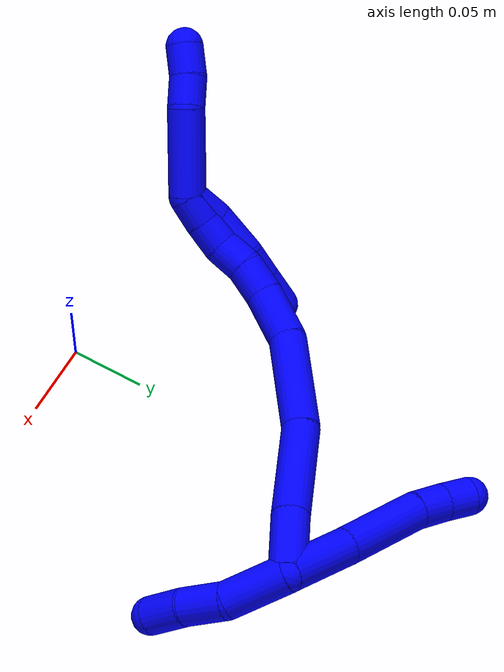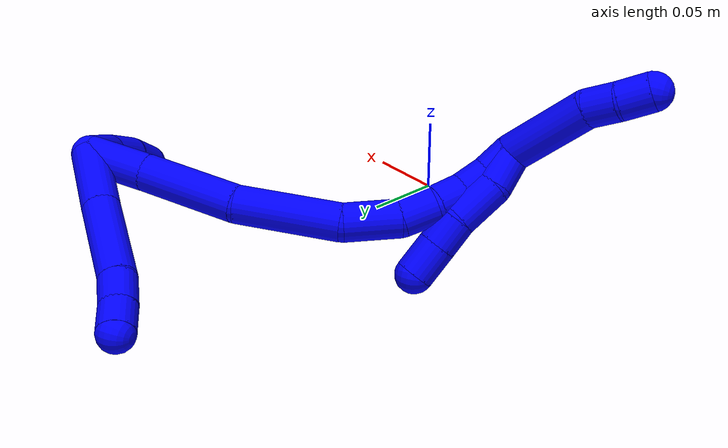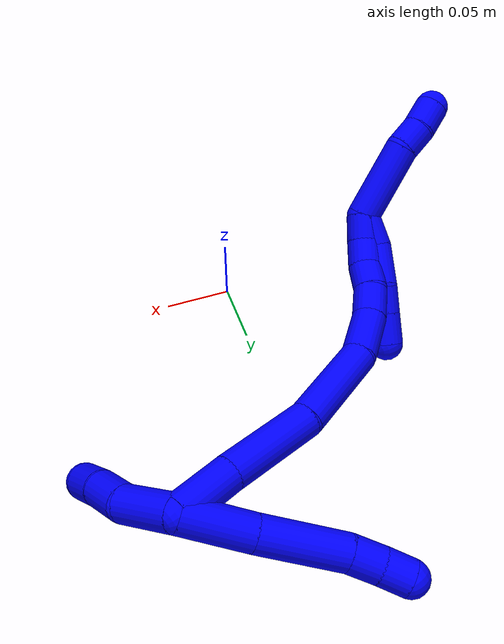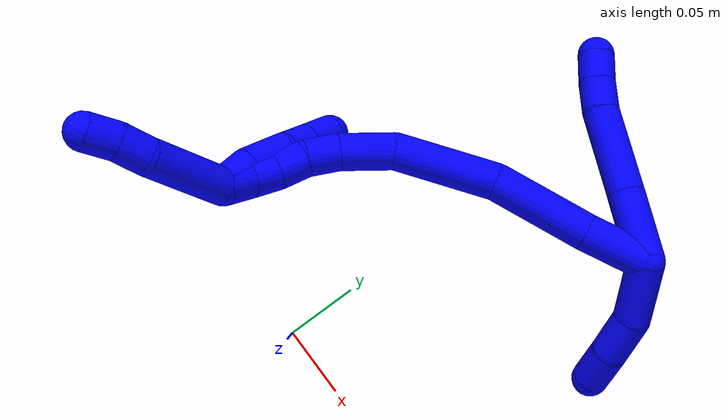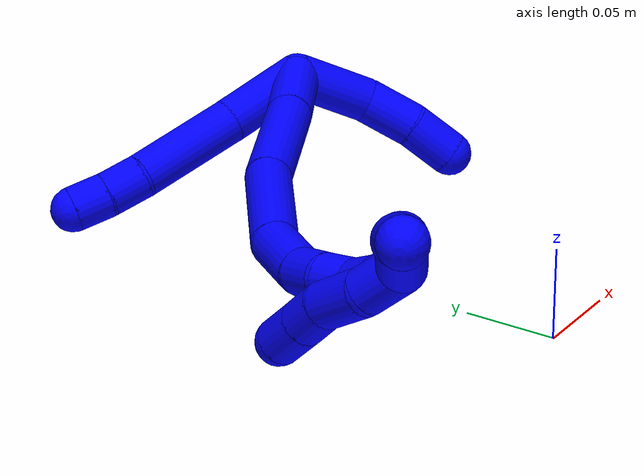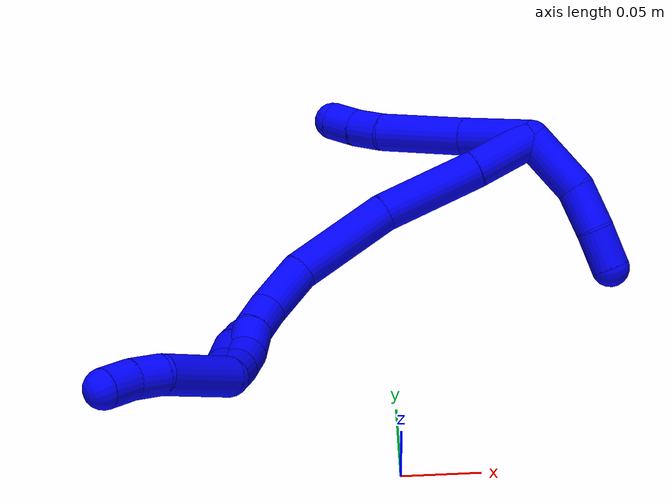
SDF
<sdf version="1.7">
 <world name="default">
  <model name="1">
   <static>0</static>
   <link name="1">
    <collision name="collision-cylinder-e_1_2_8">
     <pose>-0.00912 0.016044 -0.015501 -2.33898 -0.388075 0.867394</pose>
     <geometry><cylinder><radius>0.0125</radius><length>0.048202</length></cylinder></geometry>
     <surface>
      <friction><ode><mu>1.16</mu><mu2>1.16</mu2><slip1>0</slip1><slip2>0</slip2></ode></friction>
      <contact><ode><kp>1e+06</kp><kd>1</kd><max_vel>0</max_vel><min_depth>0.001</min_depth></ode></contact>
     </surface>
    </collision>
    <visual name="visual-cylinder-e_1_2_8">
     <pose>-0.00912 0.016044 -0.015501 -2.33898 -0.388075 0.867394</pose>
     <geometry><cylinder><radius>0.0125</radius><length>0.048202</length></cylinder></geometry>
     <material><ambient>0 0 1 1</ambient></material>
    </visual>
    <collision name="collision-cylinder-e_2_8_9">
     <pose>-0.030283 0.051024 -0.050971 -2.38275 -0.412501 0.966448</pose>
     <geometry><cylinder><radius>0.0125</radius><length>0.060079</length></cylinder></geometry>
     <surface>
      <friction><ode><mu>1.16</mu><mu2>1.16</mu2><slip1>0</slip1><slip2>0</slip2></ode></friction>
      <contact><ode><kp>1e+06</kp><kd>1</kd><max_vel>0</max_vel><min_depth>0.001</min_depth></ode></contact>
     </surface>
    </collision>
    <visual name="visual-cylinder-e_2_8_9">
     <pose>-0.030283 0.051024 -0.050971 -2.38275 -0.412501 0.966448</pose>
     <geometry><cylinder><radius>0.0125</radius><length>0.060079</length></cylinder></geometry>
     <material><ambient>0 0 1 1</ambient></material>
    </visual>
    <collision name="collision-cylinder-e_3_9_10">
     <pose>-0.047303 0.077621 -0.07675 -2.21957 -0.477688 0.911567</pose>
     <geometry><cylinder><radius>0.0125</radius><length>0.021654</length></cylinder></geometry>
     <surface>
      <friction><ode><mu>1.16</mu><mu2>1.16</mu2><slip1>0</slip1><slip2>0</slip2></ode></friction>
      <contact><ode><kp>1e+06</kp><kd>1</kd><max_vel>0</max_vel><min_depth>0.001</min_depth></ode></contact>
     </surface>
    </collision>
    <visual name="visual-cylinder-e_3_9_10">
     <pose>-0.047303 0.077621 -0.07675 -2.21957 -0.477688 0.911567</pose>
     <geometry><cylinder><radius>0.0125</radius><length>0.021654</length></cylinder></geometry>
     <material><ambient>0 0 1 1</ambient></material>
    </visual>
    <collision name="collision-cylinder-e_4_10_6">
     <pose>-0.057695 0.092223 -0.087373 -2.17715 -0.57004 1.0206</pose>
     <geometry><cylinder><radius>0.0125</radius><length>0.020065</length></cylinder></geometry>
     <surface>
      <friction><ode><mu>1.16</mu><mu2>1.16</mu2><slip1>0</slip1><slip2>0</slip2></ode></friction>
      <contact><ode><kp>1e+06</kp><kd>1</kd><max_vel>0</max_vel><min_depth>0.001</min_depth></ode></contact>
     </surface>
    </collision>
    <visual name="visual-cylinder-e_4_10_6">
     <pose>-0.057695 0.092223 -0.087373 -2.17715 -0.57004 1.0206</pose>
     <geometry><cylinder><radius>0.0125</radius><length>0.020065</length></cylinder></geometry>
     <material><ambient>0 0 1 1</ambient></material>
    </visual>
    <collision name="collision-cylinder-e_1_2_11">
     <pose>0.020302 -0.002659 0.006829 0.371275 1.22438 0.262226</pose>
     <geometry><cylinder><radius>0.0125</radius><length>0.043168</length></cylinder></geometry>
     <surface>
      <friction><ode><mu>1.16</mu><mu2>1.16</mu2><slip1>0</slip1><slip2>0</slip2></ode></friction>
      <contact><ode><kp>1e+06</kp><kd>1</kd><max_vel>0</max_vel><min_depth>0.001</min_depth></ode></contact>
     </surface>
    </collision>
    <visual name="visual-cylinder-e_1_2_11">
     <pose>0.020302 -0.002659 0.006829 0.371275 1.22438 0.262226</pose>
     <geometry><cylinder><radius>0.0125</radius><length>0.043168</length></cylinder></geometry>
     <material><ambient>0 0 1 1</ambient></material>
    </visual>
    <collision name="collision-cylinder-e_2_11_12">
     <pose>0.055445 -0.00699 0.013855 1.45389 1.45784 1.34244</pose>
     <geometry><cylinder><radius>0.0125</radius><length>0.029874</length></cylinder></geometry>
     <surface>
      <friction><ode><mu>1.16</mu><mu2>1.16</mu2><slip1>0</slip1><slip2>0</slip2></ode></friction>
      <contact><ode><kp>1e+06</kp><kd>1</kd><max_vel>0</max_vel><min_depth>0.001</min_depth></ode></contact>
     </surface>
    </collision>
    <visual name="visual-cylinder-e_2_11_12">
     <pose>0.055445 -0.00699 0.013855 1.45389 1.45784 1.34244</pose>
     <geometry><cylinder><radius>0.0125</radius><length>0.029874</length></cylinder></geometry>
     <material><ambient>0 0 1 1</ambient></material>
    </visual>
    <collision name="collision-cylinder-e_3_12_5">
     <pose>0.08375 -0.008041 0.014259 -1.24723 1.52216 -1.20147</pose>
     <geometry><cylinder><radius>0.0125</radius><length>0.026958</length></cylinder></geometry>
     <surface>
      <friction><ode><mu>1.16</mu><mu2>1.16</mu2><slip1>0</slip1><slip2>0</slip2></ode></friction>
      <contact><ode><kp>1e+06</kp><kd>1</kd><max_vel>0</max_vel><min_depth>0.001</min_depth></ode></contact>
     </surface>
    </collision>
    <visual name="visual-cylinder-e_3_12_5">
     <pose>0.08375 -0.008041 0.014259 -1.24723 1.52216 -1.20147</pose>
     <geometry><cylinder><radius>0.0125</radius><length>0.026958</length></cylinder></geometry>
     <material><ambient>0 0 1 1</ambient></material>
    </visual>
    <collision name="collision-cylinder-e_1_2_13">
     <pose>0.002365 0.001079 -0.02116 -3.09067 0.111171 -2.2831</pose>
     <geometry><cylinder><radius>0.0125</radius><length>0.042639</length></cylinder></geometry>
     <surface>
      <friction><ode><mu>1.16</mu><mu2>1.16</mu2><slip1>0</slip1><slip2>0</slip2></ode></friction>
      <contact><ode><kp>1e+06</kp><kd>1</kd><max_vel>0</max_vel><min_depth>0.001</min_depth></ode></contact>
     </surface>
    </collision>
    <visual name="visual-cylinder-e_1_2_13">
     <pose>0.002365 0.001079 -0.02116 -3.09067 0.111171 -2.2831</pose>
     <geometry><cylinder><radius>0.0125</radius><length>0.042639</length></cylinder></geometry>
     <material><ambient>0 0 1 1</ambient></material>
    </visual>
    <collision name="collision-cylinder-e_2_13_14">
     <pose>0.006572 0.004463 -0.075791 -3.0728 0.054843 -1.3459</pose>
     <geometry><cylinder><radius>0.0125</radius><length>0.067201</length></cylinder></geometry>
     <surface>
      <friction><ode><mu>1.16</mu><mu2>1.16</mu2><slip1>0</slip1><slip2>0</slip2></ode></friction>
      <contact><ode><kp>1e+06</kp><kd>1</kd><max_vel>0</max_vel><min_depth>0.001</min_depth></ode></contact>
     </surface>
    </collision>
    <visual name="visual-cylinder-e_2_13_14">
     <pose>0.006572 0.004463 -0.075791 -3.0728 0.054843 -1.3459</pose>
     <geometry><cylinder><radius>0.0125</radius><length>0.067201</length></cylinder></geometry>
     <material><ambient>0 0 1 1</ambient></material>
    </visual>
    <collision name="collision-cylinder-e_3_14_15">
     <pose>0.015738 0.00367 -0.142951 3.04984 0.213199 2.33107</pose>
     <geometry><cylinder><radius>0.0125</radius><length>0.06923</length></cylinder></geometry>
     <surface>
      <friction><ode><mu>1.16</mu><mu2>1.16</mu2><slip1>0</slip1><slip2>0</slip2></ode></friction>
      <contact><ode><kp>1e+06</kp><kd>1</kd><max_vel>0</max_vel><min_depth>0.001</min_depth></ode></contact>
     </surface>
    </collision>
    <visual name="visual-cylinder-e_3_14_15">
     <pose>0.015738 0.00367 -0.142951 3.04984 0.213199 2.33107</pose>
     <geometry><cylinder><radius>0.0125</radius><length>0.06923</length></cylinder></geometry>
     <material><ambient>0 0 1 1</ambient></material>
    </visual>
    <collision name="collision-cylinder-e_4_15_16">
     <pose>0.030359 -0.005639 -0.192454 2.76743 0.405678 1.65364</pose>
     <geometry><cylinder><radius>0.0125</radius><length>0.036981</length></cylinder></geometry>
     <surface>
      <friction><ode><mu>1.16</mu><mu2>1.16</mu2><slip1>0</slip1><slip2>0</slip2></ode></friction>
      <contact><ode><kp>1e+06</kp><kd>1</kd><max_vel>0</max_vel><min_depth>0.001</min_depth></ode></contact>
     </surface>
    </collision>
    <visual name="visual-cylinder-e_4_15_16">
     <pose>0.030359 -0.005639 -0.192454 2.76743 0.405678 1.65364</pose>
     <geometry><cylinder><radius>0.0125</radius><length>0.036981</length></cylinder></geometry>
     <material><ambient>0 0 1 1</ambient></material>
    </visual>
    <collision name="collision-cylinder-e_5_16_17">
     <pose>0.041933 -0.018796 -0.216591 2.44607 0.375689 0.965926</pose>
     <geometry><cylinder><radius>0.0125</radius><length>0.023309</length></cylinder></geometry>
     <surface>
      <friction><ode><mu>1.16</mu><mu2>1.16</mu2><slip1>0</slip1><slip2>0</slip2></ode></friction>
      <contact><ode><kp>1e+06</kp><kd>1</kd><max_vel>0</max_vel><min_depth>0.001</min_depth></ode></contact>
     </surface>
    </collision>
    <visual name="visual-cylinder-e_5_16_17">
     <pose>0.041933 -0.018796 -0.216591 2.44607 0.375689 0.965926</pose>
     <geometry><cylinder><radius>0.0125</radius><length>0.023309</length></cylinder></geometry>
     <material><ambient>0 0 1 1</ambient></material>
    </visual>
    <collision name="collision-cylinder-e_6_17_18">
     <pose>0.051937 -0.032092 -0.230624 2.30328 0.590933 1.19862</pose>
     <geometry><cylinder><radius>0.0125</radius><length>0.020564</length></cylinder></geometry>
     <surface>
      <friction><ode><mu>1.16</mu><mu2>1.16</mu2><slip1>0</slip1><slip2>0</slip2></ode></friction>
      <contact><ode><kp>1e+06</kp><kd>1</kd><max_vel>0</max_vel><min_depth>0.001</min_depth></ode></contact>
     </surface>
    </collision>
    <visual name="visual-cylinder-e_6_17_18">
     <pose>0.051937 -0.032092 -0.230624 2.30328 0.590933 1.19862</pose>
     <geometry><cylinder><radius>0.0125</radius><length>0.020564</length></cylinder></geometry>
     <material><ambient>0 0 1 1</ambient></material>
    </visual>
    <collision name="collision-cylinder-e_7_18_19">
     <pose>0.060523 -0.046076 -0.242147 2.22144 0.289405 0.572004</pose>
     <geometry><cylinder><radius>0.0125</radius><length>0.020025</length></cylinder></geometry>
     <surface>
      <friction><ode><mu>1.16</mu><mu2>1.16</mu2><slip1>0</slip1><slip2>0</slip2></ode></friction>
      <contact><ode><kp>1e+06</kp><kd>1</kd><max_vel>0</max_vel><min_depth>0.001</min_depth></ode></contact>
     </surface>
    </collision>
    <visual name="visual-cylinder-e_7_18_19">
     <pose>0.060523 -0.046076 -0.242147 2.22144 0.289405 0.572004</pose>
     <geometry><cylinder><radius>0.0125</radius><length>0.020025</length></cylinder></geometry>
     <material><ambient>0 0 1 1</ambient></material>
    </visual>
    <collision name="collision-cylinder-e_8_19_1">
     <pose>0.064708 -0.0622 -0.253127 2.11766 0.132758 0.235501</pose>
     <geometry><cylinder><radius>0.0125</radius><length>0.020051</length></cylinder></geometry>
     <surface>
      <friction><ode><mu>1.16</mu><mu2>1.16</mu2><slip1>0</slip1><slip2>0</slip2></ode></friction>
      <contact><ode><kp>1e+06</kp><kd>1</kd><max_vel>0</max_vel><min_depth>0.001</min_depth></ode></contact>
     </surface>
    </collision>
    <visual name="visual-cylinder-e_8_19_1">
     <pose>0.064708 -0.0622 -0.253127 2.11766 0.132758 0.235501</pose>
     <geometry><cylinder><radius>0.0125</radius><length>0.020051</length></cylinder></geometry>
     <material><ambient>0 0 1 1</ambient></material>
    </visual>
    <collision name="collision-cylinder-e_1_1_20">
     <pose>0.05749 -0.088186 -0.280047 2.46416 -0.297035 -0.803237</pose>
     <geometry><cylinder><radius>0.0125</radius><length>0.058392</length></cylinder></geometry>
     <surface>
      <friction><ode><mu>1.16</mu><mu2>1.16</mu2><slip1>0</slip1><slip2>0</slip2></ode></friction>
      <contact><ode><kp>1e+06</kp><kd>1</kd><max_vel>0</max_vel><min_depth>0.001</min_depth></ode></contact>
     </surface>
    </collision>
    <visual name="visual-cylinder-e_1_1_20">
     <pose>0.05749 -0.088186 -0.280047 2.46416 -0.297035 -0.803237</pose>
     <geometry><cylinder><radius>0.0125</radius><length>0.058392</length></cylinder></geometry>
     <material><ambient>0 0 1 1</ambient></material>
    </visual>
    <collision name="collision-cylinder-e_2_20_21">
     <pose>0.046859 -0.109529 -0.311223 2.75421 -0.202069 -0.954078</pose>
     <geometry><cylinder><radius>0.0125</radius><length>0.020776</length></cylinder></geometry>
     <surface>
      <friction><ode><mu>1.16</mu><mu2>1.16</mu2><slip1>0</slip1><slip2>0</slip2></ode></friction>
      <contact><ode><kp>1e+06</kp><kd>1</kd><max_vel>0</max_vel><min_depth>0.001</min_depth></ode></contact>
     </surface>
    </collision>
    <visual name="visual-cylinder-e_2_20_21">
     <pose>0.046859 -0.109529 -0.311223 2.75421 -0.202069 -0.954078</pose>
     <geometry><cylinder><radius>0.0125</radius><length>0.020776</length></cylinder></geometry>
     <material><ambient>0 0 1 1</ambient></material>
    </visual>
    <collision name="collision-cylinder-e_3_21_4">
     <pose>0.044235 -0.118221 -0.329849 2.65679 -0.051819 -0.208854</pose>
     <geometry><cylinder><radius>0.0125</radius><length>0.020832</length></cylinder></geometry>
     <surface>
      <friction><ode><mu>1.16</mu><mu2>1.16</mu2><slip1>0</slip1><slip2>0</slip2></ode></friction>
      <contact><ode><kp>1e+06</kp><kd>1</kd><max_vel>0</max_vel><min_depth>0.001</min_depth></ode></contact>
     </surface>
    </collision>
    <visual name="visual-cylinder-e_3_21_4">
     <pose>0.044235 -0.118221 -0.329849 2.65679 -0.051819 -0.208854</pose>
     <geometry><cylinder><radius>0.0125</radius><length>0.020832</length></cylinder></geometry>
     <material><ambient>0 0 1 1</ambient></material>
    </visual>
    <collision name="collision-cylinder-e_1_1_22">
     <pose>0.063119 -0.058683 -0.255998 -1.38179 -0.234171 0.193902</pose>
     <geometry><cylinder><radius>0.0125</radius><length>0.025131</length></cylinder></geometry>
     <surface>
      <friction><ode><mu>1.16</mu><mu2>1.16</mu2><slip1>0</slip1><slip2>0</slip2></ode></friction>
      <contact><ode><kp>1e+06</kp><kd>1</kd><max_vel>0</max_vel><min_depth>0.001</min_depth></ode></contact>
     </surface>
    </collision>
    <visual name="visual-cylinder-e_1_1_22">
     <pose>0.063119 -0.058683 -0.255998 -1.38179 -0.234171 0.193902</pose>
     <geometry><cylinder><radius>0.0125</radius><length>0.025131</length></cylinder></geometry>
     <material><ambient>0 0 1 1</ambient></material>
    </visual>
    <collision name="collision-cylinder-e_2_22_23">
     <pose>0.056031 -0.033669 -0.24649 -1.06462 -0.2735 0.161756</pose>
     <geometry><cylinder><radius>0.0125</radius><length>0.030897</length></cylinder></geometry>
     <surface>
      <friction><ode><mu>1.16</mu><mu2>1.16</mu2><slip1>0</slip1><slip2>0</slip2></ode></friction>
      <contact><ode><kp>1e+06</kp><kd>1</kd><max_vel>0</max_vel><min_depth>0.001</min_depth></ode></contact>
     </surface>
    </collision>
    <visual name="visual-cylinder-e_2_22_23">
     <pose>0.056031 -0.033669 -0.24649 -1.06462 -0.2735 0.161756</pose>
     <geometry><cylinder><radius>0.0125</radius><length>0.030897</length></cylinder></geometry>
     <material><ambient>0 0 1 1</ambient></material>
    </visual>
    <collision name="collision-cylinder-e_3_23_24">
     <pose>0.051204 -0.011144 -0.235408 -1.18452 -0.063571 0.042781</pose>
     <geometry><cylinder><radius>0.0125</radius><length>0.020588</length></cylinder></geometry>
     <surface>
      <friction><ode><mu>1.16</mu><mu2>1.16</mu2><slip1>0</slip1><slip2>0</slip2></ode></friction>
      <contact><ode><kp>1e+06</kp><kd>1</kd><max_vel>0</max_vel><min_depth>0.001</min_depth></ode></contact>
     </surface>
    </collision>
    <visual name="visual-cylinder-e_3_23_24">
     <pose>0.051204 -0.011144 -0.235408 -1.18452 -0.063571 0.042781</pose>
     <geometry><cylinder><radius>0.0125</radius><length>0.020588</length></cylinder></geometry>
     <material><ambient>0 0 1 1</ambient></material>
    </visual>
    <collision name="collision-cylinder-e_4_24_3">
     <pose>0.049608 0.009149 -0.227102 -1.18038 -0.080678 0.054056</pose>
     <geometry><cylinder><radius>0.0125</radius><length>0.023384</length></cylinder></geometry>
     <surface>
      <friction><ode><mu>1.16</mu><mu2>1.16</mu2><slip1>0</slip1><slip2>0</slip2></ode></friction>
      <contact><ode><kp>1e+06</kp><kd>1</kd><max_vel>0</max_vel><min_depth>0.001</min_depth></ode></contact>
     </surface>
    </collision>
    <visual name="visual-cylinder-e_4_24_3">
     <pose>0.049608 0.009149 -0.227102 -1.18038 -0.080678 0.054056</pose>
     <geometry><cylinder><radius>0.0125</radius><length>0.023384</length></cylinder></geometry>
     <material><ambient>0 0 1 1</ambient></material>
    </visual>
    <collision name="collision-sphere-3">
     <pose>0.048666 0.019927 -0.222667 0 -0 0</pose>
     <geometry><sphere><radius>0.0125</radius></sphere></geometry>
     <surface>
      <friction><ode><mu>1.16</mu><mu2>1.16</mu2><slip1>0</slip1><slip2>0</slip2></ode></friction>
      <contact><ode><kp>1e+06</kp><kd>1</kd><max_vel>0</max_vel><min_depth>0.001</min_depth></ode></contact>
     </surface>
    </collision>
    <visual name="visual-sphere-3">
     <pose>0.048666 0.019927 -0.222667 0 -0 0</pose>
     <geometry><sphere><radius>0.0125</radius></sphere></geometry>
     <material><ambient>0 0 1 1</ambient></material>
    </visual>
    <collision name="collision-sphere-24">
     <pose>0.05055 -0.001628 -0.231538 0 -0 0</pose>
     <geometry><sphere><radius>0.0125</radius></sphere></geometry>
     <surface>
      <friction><ode><mu>1.16</mu><mu2>1.16</mu2><slip1>0</slip1><slip2>0</slip2></ode></friction>
      <contact><ode><kp>1e+06</kp><kd>1</kd><max_vel>0</max_vel><min_depth>0.001</min_depth></ode></contact>
     </surface>
    </collision>
    <visual name="visual-sphere-24">
     <pose>0.05055 -0.001628 -0.231538 0 -0 0</pose>
     <geometry><sphere><radius>0.0125</radius></sphere></geometry>
     <material><ambient>0 0 1 1</ambient></material>
    </visual>
    <collision name="collision-sphere-23">
     <pose>0.051858 -0.02066 -0.239278 0 -0 0</pose>
     <geometry><sphere><radius>0.0125</radius></sphere></geometry>
     <surface>
      <friction><ode><mu>1.16</mu><mu2>1.16</mu2><slip1>0</slip1><slip2>0</slip2></ode></friction>
      <contact><ode><kp>1e+06</kp><kd>1</kd><max_vel>0</max_vel><min_depth>0.001</min_depth></ode></contact>
     </surface>
    </collision>
    <visual name="visual-sphere-23">
     <pose>0.051858 -0.02066 -0.239278 0 -0 0</pose>
     <geometry><sphere><radius>0.0125</radius></sphere></geometry>
     <material><ambient>0 0 1 1</ambient></material>
    </visual>
    <collision name="collision-sphere-22">
     <pose>0.060204 -0.046678 -0.253701 0 -0 0</pose>
     <geometry><sphere><radius>0.0125</radius></sphere></geometry>
     <surface>
      <friction><ode><mu>1.16</mu><mu2>1.16</mu2><slip1>0</slip1><slip2>0</slip2></ode></friction>
      <contact><ode><kp>1e+06</kp><kd>1</kd><max_vel>0</max_vel><min_depth>0.001</min_depth></ode></contact>
     </surface>
    </collision>
    <visual name="visual-sphere-22">
     <pose>0.060204 -0.046678 -0.253701 0 -0 0</pose>
     <geometry><sphere><radius>0.0125</radius></sphere></geometry>
     <material><ambient>0 0 1 1</ambient></material>
    </visual>
    <collision name="collision-sphere-4">
     <pose>0.043696 -0.123069 -0.339052 0 -0 0</pose>
     <geometry><sphere><radius>0.0125</radius></sphere></geometry>
     <surface>
      <friction><ode><mu>1.16</mu><mu2>1.16</mu2><slip1>0</slip1><slip2>0</slip2></ode></friction>
      <contact><ode><kp>1e+06</kp><kd>1</kd><max_vel>0</max_vel><min_depth>0.001</min_depth></ode></contact>
     </surface>
    </collision>
    <visual name="visual-sphere-4">
     <pose>0.043696 -0.123069 -0.339052 0 -0 0</pose>
     <geometry><sphere><radius>0.0125</radius></sphere></geometry>
     <material><ambient>0 0 1 1</ambient></material>
    </visual>
    <collision name="collision-sphere-21">
     <pose>0.044775 -0.113374 -0.320646 0 -0 0</pose>
     <geometry><sphere><radius>0.0125</radius></sphere></geometry>
     <surface>
      <friction><ode><mu>1.16</mu><mu2>1.16</mu2><slip1>0</slip1><slip2>0</slip2></ode></friction>
      <contact><ode><kp>1e+06</kp><kd>1</kd><max_vel>0</max_vel><min_depth>0.001</min_depth></ode></contact>
     </surface>
    </collision>
    <visual name="visual-sphere-21">
     <pose>0.044775 -0.113374 -0.320646 0 -0 0</pose>
     <geometry><sphere><radius>0.0125</radius></sphere></geometry>
     <material><ambient>0 0 1 1</ambient></material>
    </visual>
    <collision name="collision-sphere-20">
     <pose>0.048944 -0.105685 -0.3018 0 -0 0</pose>
     <geometry><sphere><radius>0.0125</radius></sphere></geometry>
     <surface>
      <friction><ode><mu>1.16</mu><mu2>1.16</mu2><slip1>0</slip1><slip2>0</slip2></ode></friction>
      <contact><ode><kp>1e+06</kp><kd>1</kd><max_vel>0</max_vel><min_depth>0.001</min_depth></ode></contact>
     </surface>
    </collision>
    <visual name="visual-sphere-20">
     <pose>0.048944 -0.105685 -0.3018 0 -0 0</pose>
     <geometry><sphere><radius>0.0125</radius></sphere></geometry>
     <material><ambient>0 0 1 1</ambient></material>
    </visual>
    <collision name="collision-sphere-11">
     <pose>0.040603 -0.005318 0.013658 0 -0 0</pose>
     <geometry><sphere><radius>0.0125</radius></sphere></geometry>
     <surface>
      <friction><ode><mu>1.16</mu><mu2>1.16</mu2><slip1>0</slip1><slip2>0</slip2></ode></friction>
      <contact><ode><kp>1e+06</kp><kd>1</kd><max_vel>0</max_vel><min_depth>0.001</min_depth></ode></contact>
     </surface>
    </collision>
    <visual name="visual-sphere-11">
     <pose>0.040603 -0.005318 0.013658 0 -0 0</pose>
     <geometry><sphere><radius>0.0125</radius></sphere></geometry>
     <material><ambient>0 0 1 1</ambient></material>
    </visual>
    <collision name="collision-sphere-6">
     <pose>-0.063109 0.099164 -0.092186 0 -0 0</pose>
     <geometry><sphere><radius>0.0125</radius></sphere></geometry>
     <surface>
      <friction><ode><mu>1.16</mu><mu2>1.16</mu2><slip1>0</slip1><slip2>0</slip2></ode></friction>
      <contact><ode><kp>1e+06</kp><kd>1</kd><max_vel>0</max_vel><min_depth>0.001</min_depth></ode></contact>
     </surface>
    </collision>
    <visual name="visual-sphere-6">
     <pose>-0.063109 0.099164 -0.092186 0 -0 0</pose>
     <geometry><sphere><radius>0.0125</radius></sphere></geometry>
     <material><ambient>0 0 1 1</ambient></material>
    </visual>
    <collision name="collision-sphere-10">
     <pose>-0.052281 0.085283 -0.082559 0 -0 0</pose>
     <geometry><sphere><radius>0.0125</radius></sphere></geometry>
     <surface>
      <friction><ode><mu>1.16</mu><mu2>1.16</mu2><slip1>0</slip1><slip2>0</slip2></ode></friction>
      <contact><ode><kp>1e+06</kp><kd>1</kd><max_vel>0</max_vel><min_depth>0.001</min_depth></ode></contact>
     </surface>
    </collision>
    <visual name="visual-sphere-10">
     <pose>-0.052281 0.085283 -0.082559 0 -0 0</pose>
     <geometry><sphere><radius>0.0125</radius></sphere></geometry>
     <material><ambient>0 0 1 1</ambient></material>
    </visual>
    <collision name="collision-sphere-9">
     <pose>-0.042326 0.069959 -0.07094 0 -0 0</pose>
     <geometry><sphere><radius>0.0125</radius></sphere></geometry>
     <surface>
      <friction><ode><mu>1.16</mu><mu2>1.16</mu2><slip1>0</slip1><slip2>0</slip2></ode></friction>
      <contact><ode><kp>1e+06</kp><kd>1</kd><max_vel>0</max_vel><min_depth>0.001</min_depth></ode></contact>
     </surface>
    </collision>
    <visual name="visual-sphere-9">
     <pose>-0.042326 0.069959 -0.07094 0 -0 0</pose>
     <geometry><sphere><radius>0.0125</radius></sphere></geometry>
     <material><ambient>0 0 1 1</ambient></material>
    </visual>
    <collision name="collision-sphere-2">
     <geometry><sphere><radius>0.0125</radius></sphere></geometry>
     <surface>
      <friction><ode><mu>1.16</mu><mu2>1.16</mu2><slip1>0</slip1><slip2>0</slip2></ode></friction>
      <contact><ode><kp>1e+06</kp><kd>1</kd><max_vel>0</max_vel><min_depth>0.001</min_depth></ode></contact>
     </surface>
    </collision>
    <visual name="visual-sphere-2">
     <geometry><sphere><radius>0.0125</radius></sphere></geometry>
     <material><ambient>0 0 1 1</ambient></material>
    </visual>
    <collision name="collision-sphere-19">
     <pose>0.063381 -0.053712 -0.247959 0 -0 0</pose>
     <geometry><sphere><radius>0.0125</radius></sphere></geometry>
     <surface>
      <friction><ode><mu>1.16</mu><mu2>1.16</mu2><slip1>0</slip1><slip2>0</slip2></ode></friction>
      <contact><ode><kp>1e+06</kp><kd>1</kd><max_vel>0</max_vel><min_depth>0.001</min_depth></ode></contact>
     </surface>
    </collision>
    <visual name="visual-sphere-19">
     <pose>0.063381 -0.053712 -0.247959 0 -0 0</pose>
     <geometry><sphere><radius>0.0125</radius></sphere></geometry>
     <material><ambient>0 0 1 1</ambient></material>
    </visual>
    <collision name="collision-sphere-8">
     <pose>-0.01824 0.032088 -0.031002 0 -0 0</pose>
     <geometry><sphere><radius>0.0125</radius></sphere></geometry>
     <surface>
      <friction><ode><mu>1.16</mu><mu2>1.16</mu2><slip1>0</slip1><slip2>0</slip2></ode></friction>
      <contact><ode><kp>1e+06</kp><kd>1</kd><max_vel>0</max_vel><min_depth>0.001</min_depth></ode></contact>
     </surface>
    </collision>
    <visual name="visual-sphere-8">
     <pose>-0.01824 0.032088 -0.031002 0 -0 0</pose>
     <geometry><sphere><radius>0.0125</radius></sphere></geometry>
     <material><ambient>0 0 1 1</ambient></material>
    </visual>
    <collision name="collision-sphere-12">
     <pose>0.070287 -0.008662 0.014051 0 -0 0</pose>
     <geometry><sphere><radius>0.0125</radius></sphere></geometry>
     <surface>
      <friction><ode><mu>1.16</mu><mu2>1.16</mu2><slip1>0</slip1><slip2>0</slip2></ode></friction>
      <contact><ode><kp>1e+06</kp><kd>1</kd><max_vel>0</max_vel><min_depth>0.001</min_depth></ode></contact>
     </surface>
    </collision>
    <visual name="visual-sphere-12">
     <pose>0.070287 -0.008662 0.014051 0 -0 0</pose>
     <geometry><sphere><radius>0.0125</radius></sphere></geometry>
     <material><ambient>0 0 1 1</ambient></material>
    </visual>
    <collision name="collision-sphere-5">
     <pose>0.097213 -0.007419 0.014468 0 -0 0</pose>
     <geometry><sphere><radius>0.0125</radius></sphere></geometry>
     <surface>
      <friction><ode><mu>1.16</mu><mu2>1.16</mu2><slip1>0</slip1><slip2>0</slip2></ode></friction>
      <contact><ode><kp>1e+06</kp><kd>1</kd><max_vel>0</max_vel><min_depth>0.001</min_depth></ode></contact>
     </surface>
    </collision>
    <visual name="visual-sphere-5">
     <pose>0.097213 -0.007419 0.014468 0 -0 0</pose>
     <geometry><sphere><radius>0.0125</radius></sphere></geometry>
     <material><ambient>0 0 1 1</ambient></material>
    </visual>
    <collision name="collision-sphere-13">
     <pose>0.00473 0.002157 -0.04232 0 -0 0</pose>
     <geometry><sphere><radius>0.0125</radius></sphere></geometry>
     <surface>
      <friction><ode><mu>1.16</mu><mu2>1.16</mu2><slip1>0</slip1><slip2>0</slip2></ode></friction>
      <contact><ode><kp>1e+06</kp><kd>1</kd><max_vel>0</max_vel><min_depth>0.001</min_depth></ode></contact>
     </surface>
    </collision>
    <visual name="visual-sphere-13">
     <pose>0.00473 0.002157 -0.04232 0 -0 0</pose>
     <geometry><sphere><radius>0.0125</radius></sphere></geometry>
     <material><ambient>0 0 1 1</ambient></material>
    </visual>
    <collision name="collision-sphere-14">
     <pose>0.008414 0.00677 -0.109262 0 -0 0</pose>
     <geometry><sphere><radius>0.0125</radius></sphere></geometry>
     <surface>
      <friction><ode><mu>1.16</mu><mu2>1.16</mu2><slip1>0</slip1><slip2>0</slip2></ode></friction>
      <contact><ode><kp>1e+06</kp><kd>1</kd><max_vel>0</max_vel><min_depth>0.001</min_depth></ode></contact>
     </surface>
    </collision>
    <visual name="visual-sphere-14">
     <pose>0.008414 0.00677 -0.109262 0 -0 0</pose>
     <geometry><sphere><radius>0.0125</radius></sphere></geometry>
     <material><ambient>0 0 1 1</ambient></material>
    </visual>
    <collision name="collision-sphere-15">
     <pose>0.023062 0.00057 -0.176639 0 -0 0</pose>
     <geometry><sphere><radius>0.0125</radius></sphere></geometry>
     <surface>
      <friction><ode><mu>1.16</mu><mu2>1.16</mu2><slip1>0</slip1><slip2>0</slip2></ode></friction>
      <contact><ode><kp>1e+06</kp><kd>1</kd><max_vel>0</max_vel><min_depth>0.001</min_depth></ode></contact>
     </surface>
    </collision>
    <visual name="visual-sphere-15">
     <pose>0.023062 0.00057 -0.176639 0 -0 0</pose>
     <geometry><sphere><radius>0.0125</radius></sphere></geometry>
     <material><ambient>0 0 1 1</ambient></material>
    </visual>
    <collision name="collision-sphere-16">
     <pose>0.037657 -0.011849 -0.208268 0 -0 0</pose>
     <geometry><sphere><radius>0.0125</radius></sphere></geometry>
     <surface>
      <friction><ode><mu>1.16</mu><mu2>1.16</mu2><slip1>0</slip1><slip2>0</slip2></ode></friction>
      <contact><ode><kp>1e+06</kp><kd>1</kd><max_vel>0</max_vel><min_depth>0.001</min_depth></ode></contact>
     </surface>
    </collision>
    <visual name="visual-sphere-16">
     <pose>0.037657 -0.011849 -0.208268 0 -0 0</pose>
     <geometry><sphere><radius>0.0125</radius></sphere></geometry>
     <material><ambient>0 0 1 1</ambient></material>
    </visual>
    <collision name="collision-sphere-17">
     <pose>0.046209 -0.025743 -0.224914 0 -0 0</pose>
     <geometry><sphere><radius>0.0125</radius></sphere></geometry>
     <surface>
      <friction><ode><mu>1.16</mu><mu2>1.16</mu2><slip1>0</slip1><slip2>0</slip2></ode></friction>
      <contact><ode><kp>1e+06</kp><kd>1</kd><max_vel>0</max_vel><min_depth>0.001</min_depth></ode></contact>
     </surface>
    </collision>
    <visual name="visual-sphere-17">
     <pose>0.046209 -0.025743 -0.224914 0 -0 0</pose>
     <geometry><sphere><radius>0.0125</radius></sphere></geometry>
     <material><ambient>0 0 1 1</ambient></material>
    </visual>
    <collision name="collision-sphere-18">
     <pose>0.057666 -0.03844 -0.236334 0 -0 0</pose>
     <geometry><sphere><radius>0.0125</radius></sphere></geometry>
     <surface>
      <friction><ode><mu>1.16</mu><mu2>1.16</mu2><slip1>0</slip1><slip2>0</slip2></ode></friction>
      <contact><ode><kp>1e+06</kp><kd>1</kd><max_vel>0</max_vel><min_depth>0.001</min_depth></ode></contact>
     </surface>
    </collision>
    <visual name="visual-sphere-18">
     <pose>0.057666 -0.03844 -0.236334 0 -0 0</pose>
     <geometry><sphere><radius>0.0125</radius></sphere></geometry>
     <material><ambient>0 0 1 1</ambient></material>
    </visual>
    <collision name="collision-sphere-1">
     <pose>0.066035 -0.070688 -0.258294 0 -0 0</pose>
     <geometry><sphere><radius>0.0125</radius></sphere></geometry>
     <surface>
      <friction><ode><mu>1.16</mu><mu2>1.16</mu2><slip1>0</slip1><slip2>0</slip2></ode></friction>
      <contact><ode><kp>1e+06</kp><kd>1</kd><max_vel>0</max_vel><min_depth>0.001</min_depth></ode></contact>
     </surface>
    </collision>
    <visual name="visual-sphere-1">
     <pose>0.066035 -0.070688 -0.258294 0 -0 0</pose>
     <geometry><sphere><radius>0.0125</radius></sphere></geometry>
     <material><ambient>0 0 1 1</ambient></material>
    </visual>
    <inertial>
     <pose>0.024591 -0.011287 -0.137003 0 -0 0</pose>
     <mass>0.75</mass>
     <inertia><ixx>4.5e-05</ixx><ixy>0</ixy><ixz>0</ixz><iyy>3.7e-05</iyy><iyz>0</iyz><izz>-4.6e-05</izz></inertia>
    </inertial>
   </link>
   <pose>0.096697 0.217767 0.059671 -1.54457 0.598876 -1.14453</pose>
  </model>
 </world>
</sdf>
